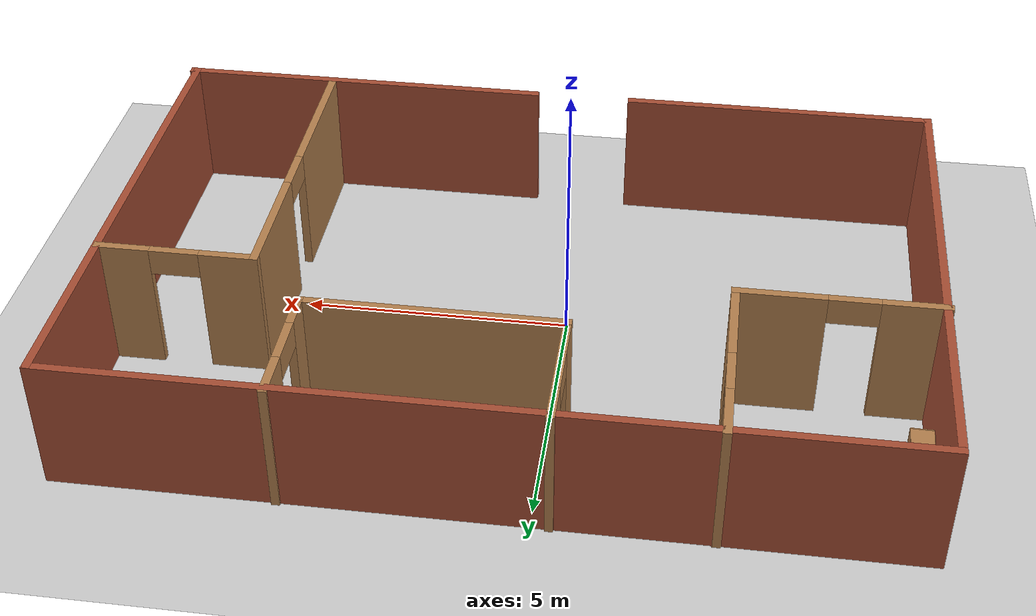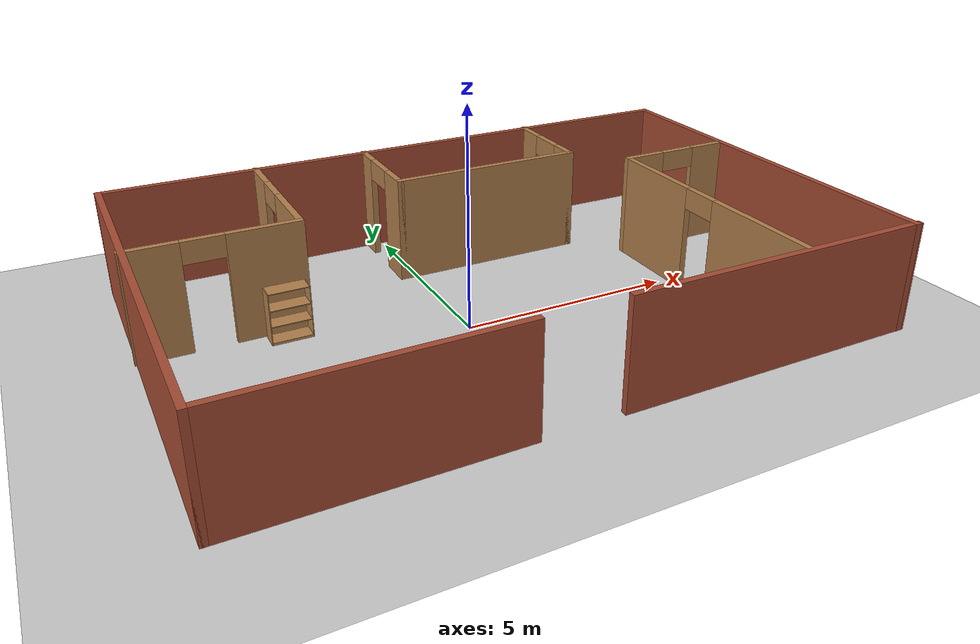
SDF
<sdf version="1.7">
 <world name="default">
  <light name="sun" type="directional">
   <pose>0 0 10 0 -0 0</pose>
   <diffuse>0.8 0.8 0.8 1</diffuse>
   <specular>0.2 0.2 0.2 1</specular>
   <attenuation>
    <range>1000</range>
    <constant>0.9</constant>
    <linear>0.01</linear>
    <quadratic>0.001</quadratic>
   </attenuation>
   <direction>-0.5 0.1 -0.9</direction>
   <spot><inner_angle>0</inner_angle><outer_angle>0</outer_angle><falloff>0</falloff></spot>
  </light>
  <model name="ground_plane">
   <static>1</static>
   <link name="link">
    <collision name="collision">
     <geometry><plane><normal>0 0 1</normal><size>100 100</size></plane></geometry>
     <surface><friction><ode><mu>100</mu><mu2>50</mu2></ode></friction></surface>
    </collision>
    <visual name="visual">
     <cast_shadows>0</cast_shadows>
     <geometry><plane><normal>0 0 1</normal><size>100 100</size></plane></geometry>
     <material>
      <script><uri>file://media/materials/scripts/gazebo.material</uri><name>Gazebo/Grey</name></script>
     </material>
    </visual>
   </link>
  </model>
  <gravity>0 0 -9.8</gravity>
  <magnetic_field>6e-06 2.3e-05 -4.2e-05</magnetic_field>
  <atmosphere type="adiabatic"/>
  <physics type="ode">
   <max_step_size>0.001</max_step_size>
   <real_time_factor>1</real_time_factor>
   <real_time_update_rate>1000</real_time_update_rate>
  </physics>
  <scene><ambient>0.4 0.4 0.4 1</ambient><background>0.7 0.7 0.7 1</background><shadows>1</shadows></scene>
  <audio><device>default</device></audio>
  <spherical_coordinates>
   <surface_model>EARTH_WGS84</surface_model>
   <latitude_deg>0</latitude_deg>
   <longitude_deg>0</longitude_deg>
   <elevation>0</elevation>
   <heading_deg>0</heading_deg>
  </spherical_coordinates>
  <model name="my_floor">
   <pose>0.802038 0.52348 0 0 -0 0</pose>
   <link name="Wall_10">
    <collision name="Wall_10_Collision">
     <geometry><box><size>15 0.15 2.5</size></box></geometry>
     <pose>0 0 1.25 0 -0 0</pose>
    </collision>
    <visual name="Wall_10_Visual">
     <pose>0 0 1.25 0 -0 0</pose>
     <geometry><box><size>15 0.15 2.5</size></box></geometry>
     <material>
      <script><uri>file://media/materials/scripts/gazebo.material</uri><name>Gazebo/Bricks</name></script>
      <ambient>1 1 1 1</ambient>
     </material>
     <meta><layer>0</layer></meta>
    </visual>
    <pose>-0.011019 4.77754 0 0 -0 0</pose>
   </link>
   <link name="Wall_11">
    <collision name="Wall_11_Collision">
     <geometry><box><size>9.75 0.15 2.5</size></box></geometry>
     <pose>0 0 1.25 0 -0 0</pose>
    </collision>
    <visual name="Wall_11_Visual">
     <pose>0 0 1.25 0 -0 0</pose>
     <geometry><box><size>9.75 0.15 2.5</size></box></geometry>
     <material>
      <script><uri>file://media/materials/scripts/gazebo.material</uri><name>Gazebo/Bricks</name></script>
      <ambient>1 1 1 1</ambient>
     </material>
     <meta><layer>0</layer></meta>
    </visual>
    <pose>7.41398 -0.022461 0 0 -0 -1.5708</pose>
   </link>
   <link name="Wall_13">
    <pose>-3.87149 3.0079 0 0 -0 -1.5708</pose>
    <visual name="Wall_13_Visual_0">
     <pose>-1.33703 0 1.25 0 -0 0</pose>
     <geometry><box><size>1.07594 0.15 2.5</size></box></geometry>
     <material>
      <script><uri>file://media/materials/scripts/gazebo.material</uri><name>Gazebo/Wood</name></script>
      <ambient>1 1 1 1</ambient>
     </material>
     <meta><layer>0</layer></meta>
    </visual>
    <collision name="Wall_13_Collision_0">
     <geometry><box><size>1.07594 0.15 2.5</size></box></geometry>
     <pose>-1.33703 0 1.25 0 -0 0</pose>
    </collision>
    <visual name="Wall_13_Visual_1">
     <pose>0.987969 0 1.25 0 -0 0</pose>
     <geometry><box><size>1.77406 0.15 2.5</size></box></geometry>
     <material>
      <script><uri>file://media/materials/scripts/gazebo.material</uri><name>Gazebo/Wood</name></script>
      <ambient>1 1 1 1</ambient>
     </material>
     <meta><layer>0</layer></meta>
    </visual>
    <collision name="Wall_13_Collision_1">
     <geometry><box><size>1.77406 0.15 2.5</size></box></geometry>
     <pose>0.987969 0 1.25 0 -0 0</pose>
    </collision>
    <visual name="Wall_13_Visual_2">
     <pose>-0.349061 0 2.25 0 -0 0</pose>
     <geometry><box><size>0.9 0.15 0.5</size></box></geometry>
     <material>
      <script><uri>file://media/materials/scripts/gazebo.material</uri><name>Gazebo/Wood</name></script>
      <ambient>1 1 1 1</ambient>
     </material>
     <meta><layer>0</layer></meta>
    </visual>
    <collision name="Wall_13_Collision_2">
     <geometry><box><size>0.9 0.15 0.5</size></box></geometry>
     <pose>-0.349061 0 2.25 0 -0 0</pose>
    </collision>
   </link>
   <link name="Wall_14">
    <pose>-5.67149 1.2079 0 0 -0 3.14159</pose>
    <visual name="Wall_14_Visual_0">
     <pose>-1.05202 0 1.25 0 -0 0</pose>
     <geometry><box><size>1.64596 0.15 2.5</size></box></geometry>
     <material>
      <script><uri>file://media/materials/scripts/gazebo.material</uri><name>Gazebo/Wood</name></script>
      <ambient>1 1 1 1</ambient>
     </material>
     <meta><layer>0</layer></meta>
    </visual>
    <collision name="Wall_14_Collision_0">
     <geometry><box><size>1.64596 0.15 2.5</size></box></geometry>
     <pose>-1.05202 0 1.25 0 -0 0</pose>
    </collision>
    <visual name="Wall_14_Visual_1">
     <pose>1.27298 0 1.25 0 -0 0</pose>
     <geometry><box><size>1.20403 0.15 2.5</size></box></geometry>
     <material>
      <script><uri>file://media/materials/scripts/gazebo.material</uri><name>Gazebo/Wood</name></script>
      <ambient>1 1 1 1</ambient>
     </material>
     <meta><layer>0</layer></meta>
    </visual>
    <collision name="Wall_14_Collision_1">
     <geometry><box><size>1.20403 0.15 2.5</size></box></geometry>
     <pose>1.27298 0 1.25 0 -0 0</pose>
    </collision>
    <visual name="Wall_14_Visual_2">
     <pose>0.220965 0 2.25 0 -0 0</pose>
     <geometry><box><size>0.9 0.15 0.5</size></box></geometry>
     <material>
      <script><uri>file://media/materials/scripts/gazebo.material</uri><name>Gazebo/Wood</name></script>
      <ambient>1 1 1 1</ambient>
     </material>
     <meta><layer>0</layer></meta>
    </visual>
    <collision name="Wall_14_Collision_2">
     <geometry><box><size>0.9 0.15 0.5</size></box></geometry>
     <pose>0.220965 0 2.25 0 -0 0</pose>
    </collision>
   </link>
   <link name="Wall_16">
    <pose>-1.12375 3.64746 0 0 -0 -1.5708</pose>
    <visual name="Wall_16_Visual_0">
     <pose>-0.879213 0 1.25 0 -0 0</pose>
     <geometry><box><size>0.741574 0.15 2.5</size></box></geometry>
     <material>
      <script><uri>file://media/materials/scripts/gazebo.material</uri><name>Gazebo/Wood</name></script>
      <ambient>1 1 1 1</ambient>
     </material>
     <meta><layer>0</layer></meta>
    </visual>
    <collision name="Wall_16_Collision_0">
     <geometry><box><size>0.741574 0.15 2.5</size></box></geometry>
     <pose>-0.879213 0 1.25 0 -0 0</pose>
    </collision>
    <visual name="Wall_16_Visual_1">
     <pose>0.820787 0 1.25 0 -0 0</pose>
     <geometry><box><size>0.858426 0.15 2.5</size></box></geometry>
     <material>
      <script><uri>file://media/materials/scripts/gazebo.material</uri><name>Gazebo/Wood</name></script>
      <ambient>1 1 1 1</ambient>
     </material>
     <meta><layer>0</layer></meta>
    </visual>
    <collision name="Wall_16_Collision_1">
     <geometry><box><size>0.858426 0.15 2.5</size></box></geometry>
     <pose>0.820787 0 1.25 0 -0 0</pose>
    </collision>
    <visual name="Wall_16_Visual_2">
     <pose>-0.058426 0 2.25 0 -0 0</pose>
     <geometry><box><size>0.9 0.15 0.5</size></box></geometry>
     <material>
      <script><uri>file://media/materials/scripts/gazebo.material</uri><name>Gazebo/Wood</name></script>
      <ambient>1 1 1 1</ambient>
     </material>
     <meta><layer>0</layer></meta>
    </visual>
    <collision name="Wall_16_Collision_2">
     <geometry><box><size>0.9 0.15 0.5</size></box></geometry>
     <pose>-0.058426 0 2.25 0 -0 0</pose>
    </collision>
   </link>
   <link name="Wall_17">
    <collision name="Wall_17_Collision">
     <geometry><box><size>4.75 0.15 2.5</size></box></geometry>
     <pose>0 0 1.25 0 -0 0</pose>
    </collision>
    <visual name="Wall_17_Visual">
     <pose>0 0 1.25 0 -0 0</pose>
     <geometry><box><size>4.75 0.15 2.5</size></box></geometry>
     <material>
      <script><uri>file://media/materials/scripts/gazebo.material</uri><name>Gazebo/Wood</name></script>
      <ambient>1 1 1 1</ambient>
     </material>
     <meta><layer>0</layer></meta>
    </visual>
    <pose>1.17625 2.47246 0 0 -0 0</pose>
   </link>
   <link name="Wall_18">
    <pose>3.47625 3.64746 0 0 -0 1.5708</pose>
    <visual name="Wall_18_Visual_0">
     <pose>-0.890573 0 1.25 0 -0 0</pose>
     <geometry><box><size>0.718854 0.15 2.5</size></box></geometry>
     <material>
      <script><uri>file://media/materials/scripts/gazebo.material</uri><name>Gazebo/Wood</name></script>
      <ambient>1 1 1 1</ambient>
     </material>
     <meta><layer>0</layer></meta>
    </visual>
    <collision name="Wall_18_Collision_0">
     <geometry><box><size>0.718854 0.15 2.5</size></box></geometry>
     <pose>-0.890573 0 1.25 0 -0 0</pose>
    </collision>
    <visual name="Wall_18_Visual_1">
     <pose>0.809427 0 1.25 0 -0 0</pose>
     <geometry><box><size>0.881146 0.15 2.5</size></box></geometry>
     <material>
      <script><uri>file://media/materials/scripts/gazebo.material</uri><name>Gazebo/Wood</name></script>
      <ambient>1 1 1 1</ambient>
     </material>
     <meta><layer>0</layer></meta>
    </visual>
    <collision name="Wall_18_Collision_1">
     <geometry><box><size>0.881146 0.15 2.5</size></box></geometry>
     <pose>0.809427 0 1.25 0 -0 0</pose>
    </collision>
    <visual name="Wall_18_Visual_2">
     <pose>-0.081146 0 2.25 0 -0 0</pose>
     <geometry><box><size>0.9 0.15 0.5</size></box></geometry>
     <material>
      <script><uri>file://media/materials/scripts/gazebo.material</uri><name>Gazebo/Wood</name></script>
      <ambient>1 1 1 1</ambient>
     </material>
     <meta><layer>0</layer></meta>
    </visual>
    <collision name="Wall_18_Collision_2">
     <geometry><box><size>0.9 0.15 0.5</size></box></geometry>
     <pose>-0.081146 0 2.25 0 -0 0</pose>
    </collision>
   </link>
   <link name="Wall_2">
    <collision name="Wall_2_Collision">
     <geometry><box><size>9.75 0.15 2.5</size></box></geometry>
     <pose>0 0 1.25 0 -0 0</pose>
    </collision>
    <visual name="Wall_2_Visual">
     <pose>0 0 1.25 0 -0 0</pose>
     <geometry><box><size>9.75 0.15 2.5</size></box></geometry>
     <material>
      <script><uri>file://media/materials/scripts/gazebo.material</uri><name>Gazebo/Bricks</name></script>
      <ambient>1 1 1 1</ambient>
     </material>
     <meta><layer>0</layer></meta>
    </visual>
    <pose>-7.43602 -0.022461 0 0 -0 -1.5708</pose>
   </link>
   <link name="Wall_20">
    <pose>5.96512 1.40295 0 0 -0 3.14159</pose>
    <visual name="Wall_20_Visual_0">
     <pose>-0.989641 0 1.25 0 -0 0</pose>
     <geometry><box><size>1.02072 0.15 2.5</size></box></geometry>
     <material>
      <script><uri>file://media/materials/scripts/gazebo.material</uri><name>Gazebo/Wood</name></script>
      <ambient>1 1 1 1</ambient>
     </material>
     <meta><layer>0</layer></meta>
    </visual>
    <collision name="Wall_20_Collision_0">
     <geometry><box><size>1.02072 0.15 2.5</size></box></geometry>
     <pose>-0.989641 0 1.25 0 -0 0</pose>
    </collision>
    <visual name="Wall_20_Visual_1">
     <pose>0.960359 0 1.25 0 -0 0</pose>
     <geometry><box><size>1.07928 0.15 2.5</size></box></geometry>
     <material>
      <script><uri>file://media/materials/scripts/gazebo.material</uri><name>Gazebo/Wood</name></script>
      <ambient>1 1 1 1</ambient>
     </material>
     <meta><layer>0</layer></meta>
    </visual>
    <collision name="Wall_20_Collision_1">
     <geometry><box><size>1.07928 0.15 2.5</size></box></geometry>
     <pose>0.960359 0 1.25 0 -0 0</pose>
    </collision>
    <visual name="Wall_20_Visual_2">
     <pose>-0.029283 0 2.25 0 -0 0</pose>
     <geometry><box><size>0.9 0.15 0.5</size></box></geometry>
     <material>
      <script><uri>file://media/materials/scripts/gazebo.material</uri><name>Gazebo/Wood</name></script>
      <ambient>1 1 1 1</ambient>
     </material>
     <meta><layer>0</layer></meta>
    </visual>
    <collision name="Wall_20_Collision_2">
     <geometry><box><size>0.9 0.15 0.5</size></box></geometry>
     <pose>-0.029283 0 2.25 0 -0 0</pose>
    </collision>
   </link>
   <link name="Wall_21">
    <pose>4.54012 -1.64705 0 0 -0 -1.5708</pose>
    <visual name="Wall_21_Visual_0">
     <pose>-1.89352 0 1.25 0 -0 0</pose>
     <geometry><box><size>2.46296 0.15 2.5</size></box></geometry>
     <material>
      <script><uri>file://media/materials/scripts/gazebo.material</uri><name>Gazebo/Wood</name></script>
      <ambient>1 1 1 1</ambient>
     </material>
     <meta><layer>0</layer></meta>
    </visual>
    <collision name="Wall_21_Collision_0">
     <geometry><box><size>2.46296 0.15 2.5</size></box></geometry>
     <pose>-1.89352 0 1.25 0 -0 0</pose>
    </collision>
    <visual name="Wall_21_Visual_1">
     <pose>1.68148 0 1.25 0 -0 0</pose>
     <geometry><box><size>2.88704 0.15 2.5</size></box></geometry>
     <material>
      <script><uri>file://media/materials/scripts/gazebo.material</uri><name>Gazebo/Wood</name></script>
      <ambient>1 1 1 1</ambient>
     </material>
     <meta><layer>0</layer></meta>
    </visual>
    <collision name="Wall_21_Collision_1">
     <geometry><box><size>2.88704 0.15 2.5</size></box></geometry>
     <pose>1.68148 0 1.25 0 -0 0</pose>
    </collision>
    <visual name="Wall_21_Visual_2">
     <pose>-0.212041 0 2.25 0 -0 0</pose>
     <geometry><box><size>0.9 0.15 0.5</size></box></geometry>
     <material>
      <script><uri>file://media/materials/scripts/gazebo.material</uri><name>Gazebo/Wood</name></script>
      <ambient>1 1 1 1</ambient>
     </material>
     <meta><layer>0</layer></meta>
    </visual>
    <collision name="Wall_21_Collision_2">
     <geometry><box><size>0.9 0.15 0.5</size></box></geometry>
     <pose>-0.212041 0 2.25 0 -0 0</pose>
    </collision>
   </link>
   <link name="Wall_4">
    <collision name="Wall_4_Collision">
     <geometry><box><size>6 0.15 2.5</size></box></geometry>
     <pose>0 0 1.25 0 -0 0</pose>
    </collision>
    <visual name="Wall_4_Visual">
     <pose>0 0 1.25 0 -0 0</pose>
     <geometry><box><size>6 0.15 2.5</size></box></geometry>
     <material>
      <script><uri>file://media/materials/scripts/gazebo.material</uri><name>Gazebo/Bricks</name></script>
      <ambient>1 1 1 1</ambient>
     </material>
     <meta><layer>0</layer></meta>
    </visual>
    <pose>-4.51102 -4.82246 0 0 -0 0</pose>
   </link>
   <link name="Wall_8">
    <collision name="Wall_8_Collision">
     <geometry><box><size>7.25 0.15 2.5</size></box></geometry>
     <pose>0 0 1.25 0 -0 0</pose>
    </collision>
    <visual name="Wall_8_Visual">
     <pose>0 0 1.25 0 -0 0</pose>
     <geometry><box><size>7.25 0.15 2.5</size></box></geometry>
     <material>
      <script><uri>file://media/materials/scripts/gazebo.material</uri><name>Gazebo/Bricks</name></script>
      <ambient>1 1 1 1</ambient>
     </material>
     <meta><layer>0</layer></meta>
    </visual>
    <pose>3.92149 -4.8164 0 0 -0 0</pose>
   </link>
   <static>1</static>
  </model>
  <model name="bookshelf">
   <static>1</static>
   <link name="link">
    <inertial><mass>1</mass></inertial>
    <collision name="back">
     <pose>0 0.005 0.6 0 -0 0</pose>
     <geometry><box><size>0.9 0.01 1.2</size></box></geometry>
    </collision>
    <visual name="visual1">
     <pose>0 0.005 0.6 0 -0 0</pose>
     <geometry><box><size>0.9 0.01 1.2</size></box></geometry>
     <material>
      <script><uri>file://media/materials/scripts/gazebo.material</uri><name>Gazebo/Wood</name></script>
     </material>
    </visual>
    <collision name="left_side">
     <pose>0.45 -0.195 0.6 0 -0 0</pose>
     <geometry><box><size>0.02 0.4 1.2</size></box></geometry>
    </collision>
    <visual name="visual2">
     <pose>0.45 -0.195 0.6 0 -0 0</pose>
     <geometry><box><size>0.02 0.4 1.2</size></box></geometry>
     <material>
      <script><uri>file://media/materials/scripts/gazebo.material</uri><name>Gazebo/Wood</name></script>
     </material>
    </visual>
    <collision name="right_side">
     <pose>-0.45 -0.195 0.6 0 -0 0</pose>
     <geometry><box><size>0.02 0.4 1.2</size></box></geometry>
    </collision>
    <visual name="visual3">
     <pose>-0.45 -0.195 0.6 0 -0 0</pose>
     <geometry><box><size>0.02 0.4 1.2</size></box></geometry>
     <material>
      <script><uri>file://media/materials/scripts/gazebo.material</uri><name>Gazebo/Wood</name></script>
     </material>
    </visual>
    <collision name="bottom">
     <pose>0 -0.195 0.03 0 -0 0</pose>
     <geometry><box><size>0.88 0.4 0.06</size></box></geometry>
    </collision>
    <visual name="visual4">
     <pose>0 -0.195 0.03 0 -0 0</pose>
     <geometry><box><size>0.88 0.4 0.06</size></box></geometry>
     <material>
      <script><uri>file://media/materials/scripts/gazebo.material</uri><name>Gazebo/Wood</name></script>
     </material>
    </visual>
    <collision name="top">
     <pose>0 -0.195 1.19 0 -0 0</pose>
     <geometry><box><size>0.88 0.4 0.02</size></box></geometry>
    </collision>
    <visual name="visual5">
     <pose>0 -0.195 1.19 0 -0 0</pose>
     <geometry><box><size>0.88 0.4 0.02</size></box></geometry>
     <material>
      <script><uri>file://media/materials/scripts/gazebo.material</uri><name>Gazebo/Wood</name></script>
     </material>
    </visual>
    <collision name="low_shelf">
     <pose>0 -0.195 0.43 0 -0 0</pose>
     <geometry><box><size>0.88 0.4 0.02</size></box></geometry>
    </collision>
    <visual name="visual6">
     <pose>0 -0.195 0.43 0 -0 0</pose>
     <geometry><box><size>0.88 0.4 0.02</size></box></geometry>
     <material>
      <script><uri>file://media/materials/scripts/gazebo.material</uri><name>Gazebo/Wood</name></script>
     </material>
    </visual>
    <collision name="high_shelf">
     <pose>0 -0.195 0.8 0 -0 0</pose>
     <geometry><box><size>0.88 0.4 0.02</size></box></geometry>
    </collision>
    <visual name="visual7">
     <pose>0 -0.195 0.8 0 -0 0</pose>
     <geometry><box><size>0.88 0.4 0.02</size></box></geometry>
     <material>
      <script><uri>file://media/materials/scripts/gazebo.material</uri><name>Gazebo/Wood</name></script>
     </material>
    </visual>
   </link>
   <pose>-3.58193 1.58288 0 0 -0 0</pose>
  </model>
  <model name="bookshelf_0">
   <static>1</static>
   <link name="link">
    <inertial><mass>1</mass></inertial>
    <collision name="back">
     <pose>0 0.005 0.6 0 -0 0</pose>
     <geometry><box><size>0.9 0.01 1.2</size></box></geometry>
    </collision>
    <visual name="visual1">
     <pose>0 0.005 0.6 0 -0 0</pose>
     <geometry><box><size>0.9 0.01 1.2</size></box></geometry>
     <material>
      <script><uri>file://media/materials/scripts/gazebo.material</uri><name>Gazebo/Wood</name></script>
     </material>
    </visual>
    <collision name="left_side">
     <pose>0.45 -0.195 0.6 0 -0 0</pose>
     <geometry><box><size>0.02 0.4 1.2</size></box></geometry>
    </collision>
    <visual name="visual2">
     <pose>0.45 -0.195 0.6 0 -0 0</pose>
     <geometry><box><size>0.02 0.4 1.2</size></box></geometry>
     <material>
      <script><uri>file://media/materials/scripts/gazebo.material</uri><name>Gazebo/Wood</name></script>
     </material>
    </visual>
    <collision name="right_side">
     <pose>-0.45 -0.195 0.6 0 -0 0</pose>
     <geometry><box><size>0.02 0.4 1.2</size></box></geometry>
    </collision>
    <visual name="visual3">
     <pose>-0.45 -0.195 0.6 0 -0 0</pose>
     <geometry><box><size>0.02 0.4 1.2</size></box></geometry>
     <material>
      <script><uri>file://media/materials/scripts/gazebo.material</uri><name>Gazebo/Wood</name></script>
     </material>
    </visual>
    <collision name="bottom">
     <pose>0 -0.195 0.03 0 -0 0</pose>
     <geometry><box><size>0.88 0.4 0.06</size></box></geometry>
    </collision>
    <visual name="visual4">
     <pose>0 -0.195 0.03 0 -0 0</pose>
     <geometry><box><size>0.88 0.4 0.06</size></box></geometry>
     <material>
      <script><uri>file://media/materials/scripts/gazebo.material</uri><name>Gazebo/Wood</name></script>
     </material>
    </visual>
    <collision name="top">
     <pose>0 -0.195 1.19 0 -0 0</pose>
     <geometry><box><size>0.88 0.4 0.02</size></box></geometry>
    </collision>
    <visual name="visual5">
     <pose>0 -0.195 1.19 0 -0 0</pose>
     <geometry><box><size>0.88 0.4 0.02</size></box></geometry>
     <material>
      <script><uri>file://media/materials/scripts/gazebo.material</uri><name>Gazebo/Wood</name></script>
     </material>
    </visual>
    <collision name="low_shelf">
     <pose>0 -0.195 0.43 0 -0 0</pose>
     <geometry><box><size>0.88 0.4 0.02</size></box></geometry>
    </collision>
    <visual name="visual6">
     <pose>0 -0.195 0.43 0 -0 0</pose>
     <geometry><box><size>0.88 0.4 0.02</size></box></geometry>
     <material>
      <script><uri>file://media/materials/scripts/gazebo.material</uri><name>Gazebo/Wood</name></script>
     </material>
    </visual>
    <collision name="high_shelf">
     <pose>0 -0.195 0.8 0 -0 0</pose>
     <geometry><box><size>0.88 0.4 0.02</size></box></geometry>
    </collision>
    <visual name="visual7">
     <pose>0 -0.195 0.8 0 -0 0</pose>
     <geometry><box><size>0.88 0.4 0.02</size></box></geometry>
     <material>
      <script><uri>file://media/materials/scripts/gazebo.material</uri><name>Gazebo/Wood</name></script>
     </material>
    </visual>
   </link>
   <pose>-6.49098 3.86632 0 0 -0 1.55337</pose>
  </model>
 </world>
</sdf>
